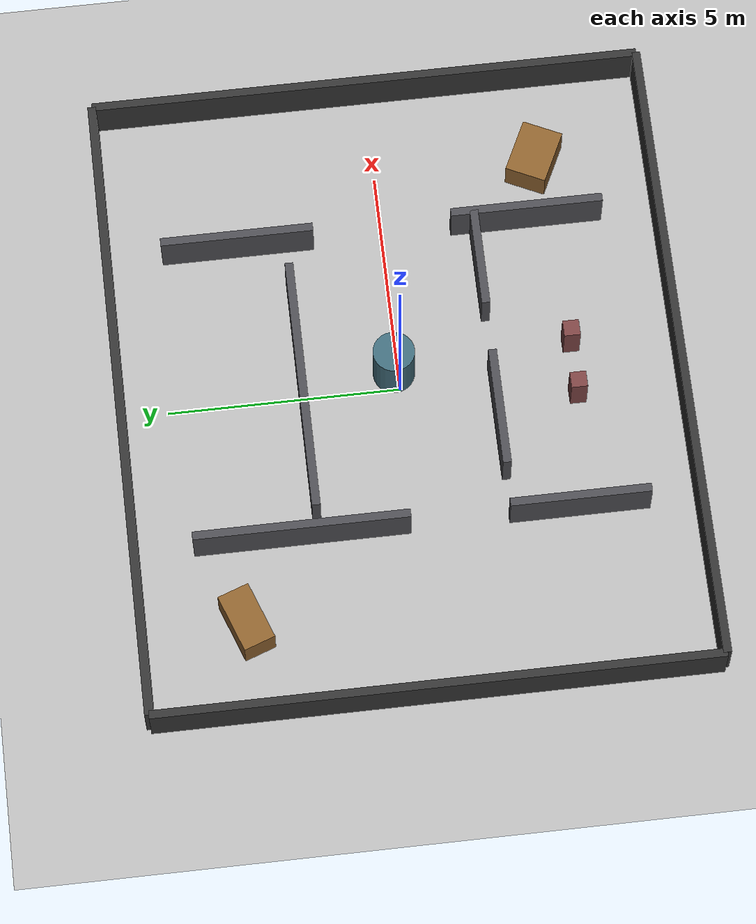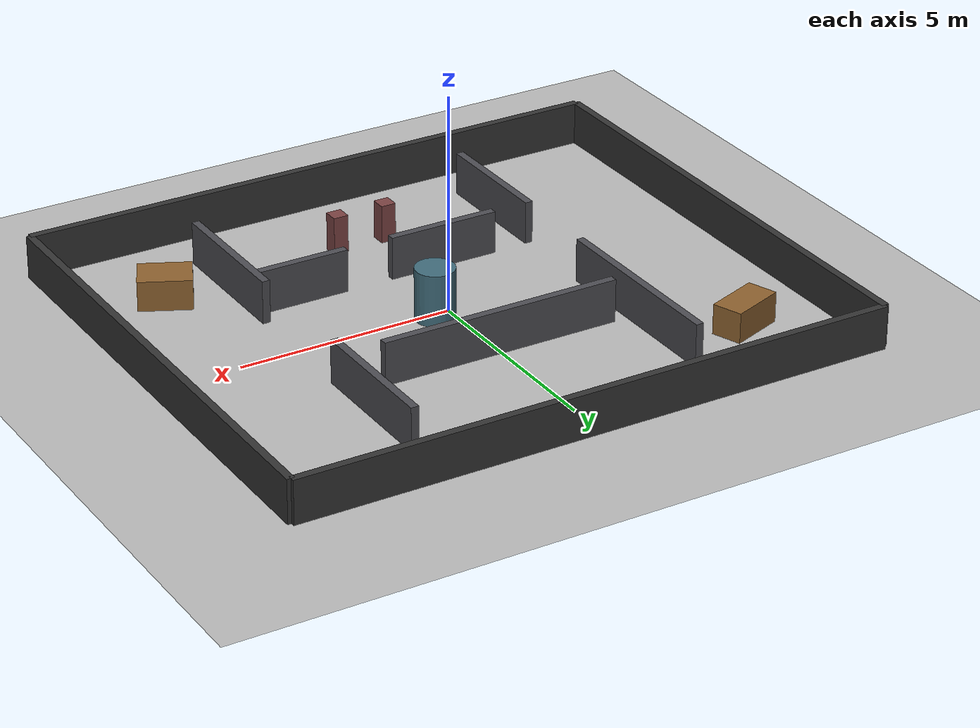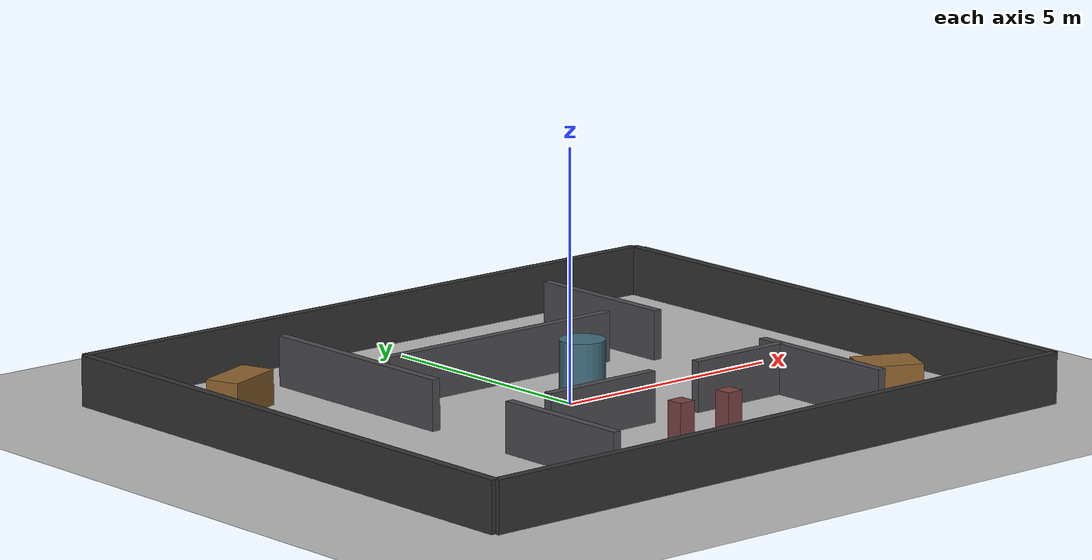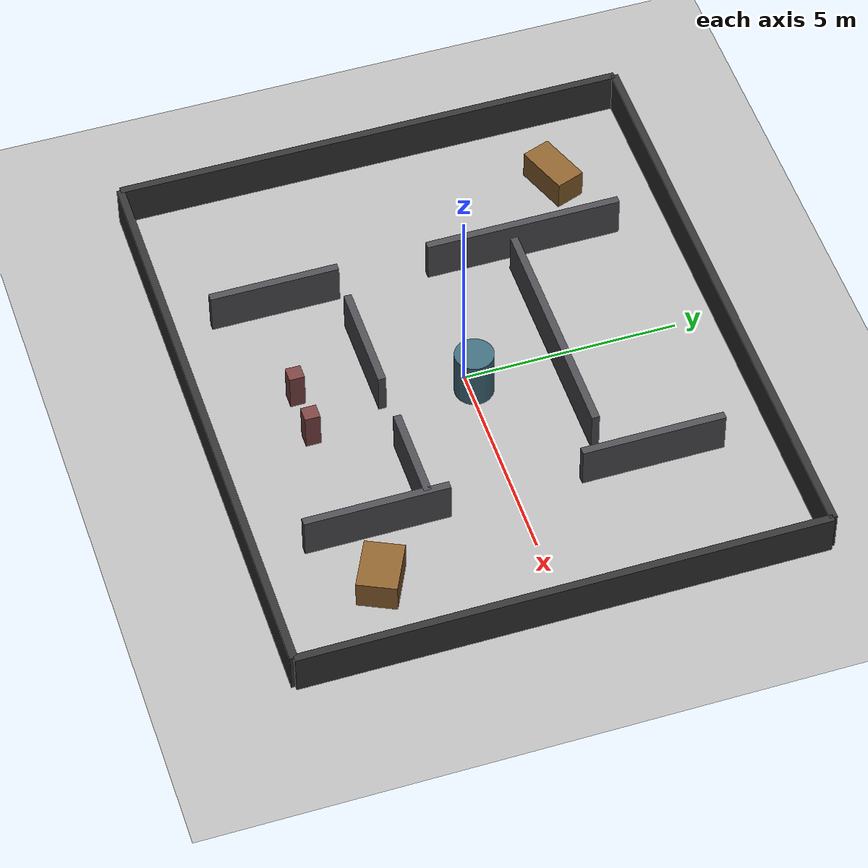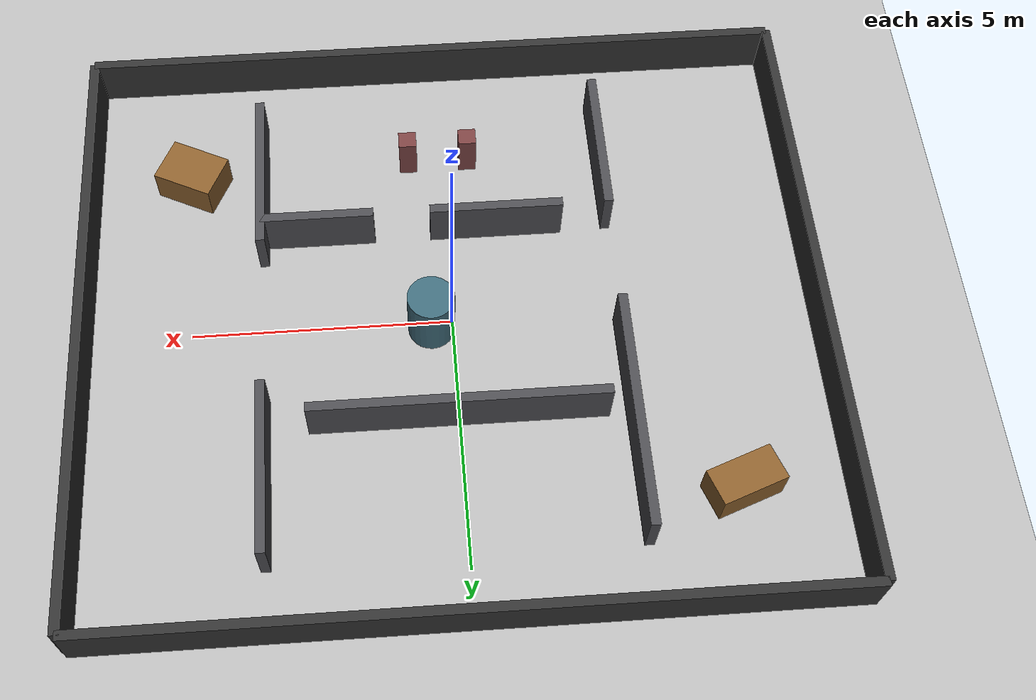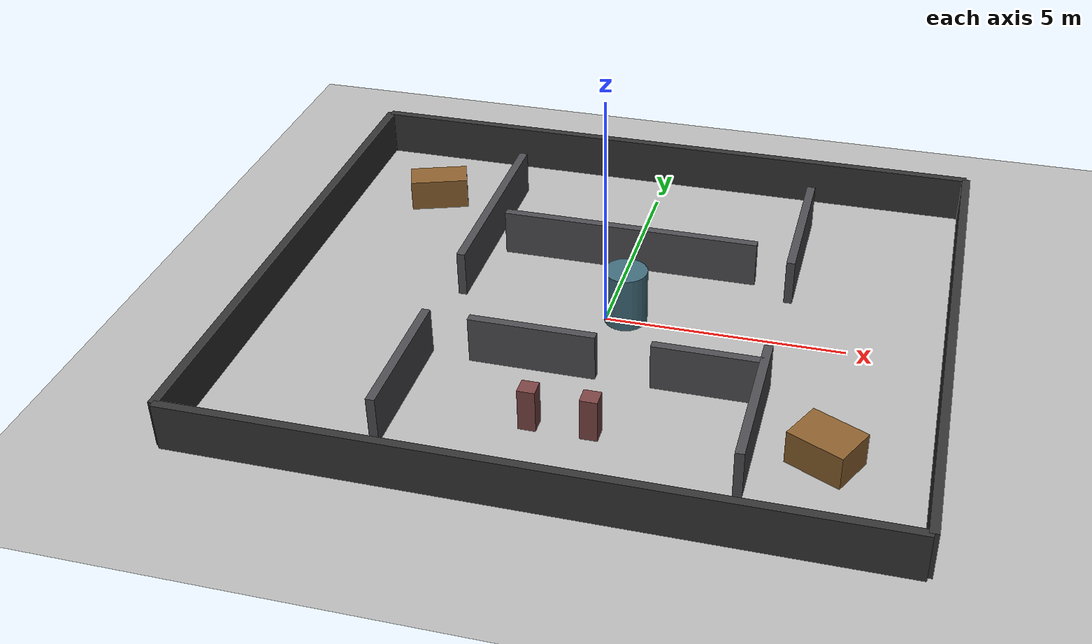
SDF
<?xml version="1.0" ?>
<sdf version="1.9">
  <world name="complex_mapping">
    <physics name="3ms" type="dartsim">
      <max_step_size>0.003</max_step_size>
      <real_time_update_rate>1000.0</real_time_update_rate>
      <real_time_factor>1.0</real_time_factor>
      <dart>
        <collision_detector>bullet</collision_detector>
      </dart>
    </physics>

    <plugin filename="gz-sim-physics-system" name="gz::sim::systems::Physics">
      <engine>
        <filename>gz-physics-dartsim-plugin</filename>
      </engine>
    </plugin>
    <plugin filename="gz-sim-user-commands-system" name="gz::sim::systems::UserCommands"/>
    <plugin filename="gz-sim-scene-broadcaster-system" name="gz::sim::systems::SceneBroadcaster"/>
    <plugin filename="gz-sim-sensors-system" name="gz::sim::systems::Sensors">
      <render_engine>ogre2</render_engine>
    </plugin>
    <plugin filename="gz-sim-imu-system" name="gz::sim::systems::Imu"/>
    <plugin filename="gz-sim-contact-system" name="gz::sim::systems::Contact"/>

    <light type="directional" name="sun">
      <cast_shadows>false</cast_shadows>
      <pose>0 0 10 0 0 0</pose>
      <diffuse>0.8 0.8 0.8 1</diffuse>
      <specular>0.2 0.2 0.2 1</specular>
      <attenuation>
        <range>1000</range>
        <constant>0.9</constant>
        <linear>0.01</linear>
        <quadratic>0.001</quadratic>
      </attenuation>
      <direction>-0.5 0.1 -0.9</direction>
    </light>

    <model name="ground_plane">
      <static>true</static>
      <link name="link">
        <collision name="collision">
          <geometry>
            <plane>
              <normal>0 0 1</normal>
              <size>80 80</size>
            </plane>
          </geometry>
        </collision>
        <visual name="visual">
          <geometry>
            <plane>
              <normal>0 0 1</normal>
              <size>80 80</size>
            </plane>
          </geometry>
          <material>
            <ambient>0.72 0.72 0.72 1</ambient>
            <diffuse>0.72 0.72 0.72 1</diffuse>
            <specular>0.15 0.15 0.15 1</specular>
          </material>
        </visual>
      </link>
    </model>

    <model name="outer_north_wall">
      <static>true</static>
      <pose>0 6 0.5 0 0 0</pose>
      <link name="link">
        <collision name="collision"><geometry><box><size>14 0.18 1</size></box></geometry></collision>
        <visual name="visual"><geometry><box><size>14 0.18 1</size></box></geometry><material><diffuse>0.2 0.2 0.2 1</diffuse></material></visual>
      </link>
    </model>
    <model name="outer_south_wall">
      <static>true</static>
      <pose>0 -6 0.5 0 0 0</pose>
      <link name="link">
        <collision name="collision"><geometry><box><size>14 0.18 1</size></box></geometry></collision>
        <visual name="visual"><geometry><box><size>14 0.18 1</size></box></geometry><material><diffuse>0.2 0.2 0.2 1</diffuse></material></visual>
      </link>
    </model>
    <model name="outer_east_wall">
      <static>true</static>
      <pose>7 0 0.5 0 0 0</pose>
      <link name="link">
        <collision name="collision"><geometry><box><size>0.18 12 1</size></box></geometry></collision>
        <visual name="visual"><geometry><box><size>0.18 12 1</size></box></geometry><material><diffuse>0.2 0.2 0.2 1</diffuse></material></visual>
      </link>
    </model>
    <model name="outer_west_wall">
      <static>true</static>
      <pose>-7 0 0.5 0 0 0</pose>
      <link name="link">
        <collision name="collision"><geometry><box><size>0.18 12 1</size></box></geometry></collision>
        <visual name="visual"><geometry><box><size>0.18 12 1</size></box></geometry><material><diffuse>0.2 0.2 0.2 1</diffuse></material></visual>
      </link>
    </model>

    <model name="left_room_wall_upper">
      <static>true</static>
      <pose>-3.2 2.45 0.5 0 0 0</pose>
      <link name="link">
        <collision name="collision"><geometry><box><size>0.18 4.6 1</size></box></geometry></collision>
        <visual name="visual"><geometry><box><size>0.18 4.6 1</size></box></geometry><material><diffuse>0.3 0.3 0.32 1</diffuse></material></visual>
      </link>
    </model>
    <model name="left_room_wall_lower">
      <static>true</static>
      <pose>-3.2 -3.45 0.5 0 0 0</pose>
      <link name="link">
        <collision name="collision"><geometry><box><size>0.18 3.0 1</size></box></geometry></collision>
        <visual name="visual"><geometry><box><size>0.18 3.0 1</size></box></geometry><material><diffuse>0.3 0.3 0.32 1</diffuse></material></visual>
      </link>
    </model>
    <model name="right_room_wall_upper">
      <static>true</static>
      <pose>3.6 3.15 0.5 0 0 0</pose>
      <link name="link">
        <collision name="collision"><geometry><box><size>0.18 3.3 1</size></box></geometry></collision>
        <visual name="visual"><geometry><box><size>0.18 3.3 1</size></box></geometry><material><diffuse>0.3 0.3 0.32 1</diffuse></material></visual>
      </link>
    </model>
    <model name="right_room_wall_lower">
      <static>true</static>
      <pose>3.6 -3.15 0.5 0 0 0</pose>
      <link name="link">
        <collision name="collision"><geometry><box><size>0.18 3.3 1</size></box></geometry></collision>
        <visual name="visual"><geometry><box><size>0.18 3.3 1</size></box></geometry><material><diffuse>0.3 0.3 0.32 1</diffuse></material></visual>
      </link>
    </model>
    <model name="upper_corridor_wall">
      <static>true</static>
      <pose>0 2.1 0.5 0 0 0</pose>
      <link name="link">
        <collision name="collision"><geometry><box><size>5.6 0.18 1</size></box></geometry></collision>
        <visual name="visual"><geometry><box><size>5.6 0.18 1</size></box></geometry><material><diffuse>0.3 0.3 0.32 1</diffuse></material></visual>
      </link>
    </model>
    <model name="lower_corridor_wall_left">
      <static>true</static>
      <pose>-1.0 -2.0 0.5 0 0 0</pose>
      <link name="link">
        <collision name="collision"><geometry><box><size>2.6 0.18 1</size></box></geometry></collision>
        <visual name="visual"><geometry><box><size>2.6 0.18 1</size></box></geometry><material><diffuse>0.3 0.3 0.32 1</diffuse></material></visual>
      </link>
    </model>
    <model name="lower_corridor_wall_right">
      <static>true</static>
      <pose>2.5 -2.0 0.5 0 0 0</pose>
      <link name="link">
        <collision name="collision"><geometry><box><size>2.2 0.18 1</size></box></geometry></collision>
        <visual name="visual"><geometry><box><size>2.2 0.18 1</size></box></geometry><material><diffuse>0.3 0.3 0.32 1</diffuse></material></visual>
      </link>
    </model>

    <model name="island_box_1">
      <static>true</static>
      <pose>-5.0 3.8 0.35 0 0 0.35</pose>
      <link name="link">
        <collision name="collision"><geometry><box><size>1.3 0.7 0.7</size></box></geometry></collision>
        <visual name="visual"><geometry><box><size>1.3 0.7 0.7</size></box></geometry><material><diffuse>0.55 0.38 0.18 1</diffuse></material></visual>
      </link>
    </model>
    <model name="island_box_2">
      <static>true</static>
      <pose>5.0 -3.5 0.35 0 0 -0.45</pose>
      <link name="link">
        <collision name="collision"><geometry><box><size>1.2 0.9 0.7</size></box></geometry></collision>
        <visual name="visual"><geometry><box><size>1.2 0.9 0.7</size></box></geometry><material><diffuse>0.55 0.38 0.18 1</diffuse></material></visual>
      </link>
    </model>
    <model name="center_pillar">
      <static>true</static>
      <pose>0.4 0.1 0.6 0 0 0</pose>
      <link name="link">
        <collision name="collision"><geometry><cylinder><radius>0.45</radius><length>1.2</length></cylinder></geometry></collision>
        <visual name="visual"><geometry><cylinder><radius>0.45</radius><length>1.2</length></cylinder></geometry><material><diffuse>0.25 0.42 0.48 1</diffuse></material></visual>
      </link>
    </model>
    <model name="narrow_gate_post_left">
      <static>true</static>
      <pose>-0.55 -3.75 0.45 0 0 0</pose>
      <link name="link">
        <collision name="collision"><geometry><box><size>0.35 0.35 0.9</size></box></geometry></collision>
        <visual name="visual"><geometry><box><size>0.35 0.35 0.9</size></box></geometry><material><diffuse>0.48 0.26 0.26 1</diffuse></material></visual>
      </link>
    </model>
    <model name="narrow_gate_post_right">
      <static>true</static>
      <pose>0.65 -3.75 0.45 0 0 0</pose>
      <link name="link">
        <collision name="collision"><geometry><box><size>0.35 0.35 0.9</size></box></geometry></collision>
        <visual name="visual"><geometry><box><size>0.35 0.35 0.9</size></box></geometry><material><diffuse>0.48 0.26 0.26 1</diffuse></material></visual>
      </link>
    </model>
  </world>
</sdf>
